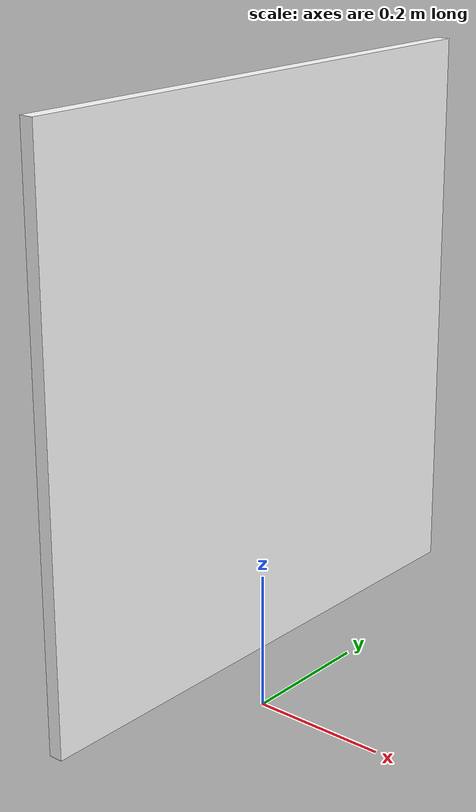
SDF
<?xml version="1.0"?>
<sdf version='1.10'>
    <model name="picturebox2">
        <pose> 0 0 0.5 0 0 0</pose>
        <static> true </static>
        <link name="picturebox2_link">
            <collision name="picturebox2_collision">
                <geometry>
                    <box>
                        <size>0.02 0.8 0.8</size>
                    </box>
                </geometry>
            </collision>

            <visual name="picturebox2_visual">
                <geometry>
                    <box>
                        <size>0.02 0.8 0.8</size>
                    </box>
                </geometry>
                <material>
                <ambient>1 1 1 1</ambient>
                <diffuse>1 1 1 1</diffuse>
                <specular>0.1 0.1 0.1 1</specular>
                <pbr>
                    <metal>
                    <albedo_map>/home/netlab/littletank/model/zyz_material/picturebox2.png</albedo_map>
                    </metal>
                </pbr>
                </material>
            </visual>
        </link>
    </model>
</sdf>
